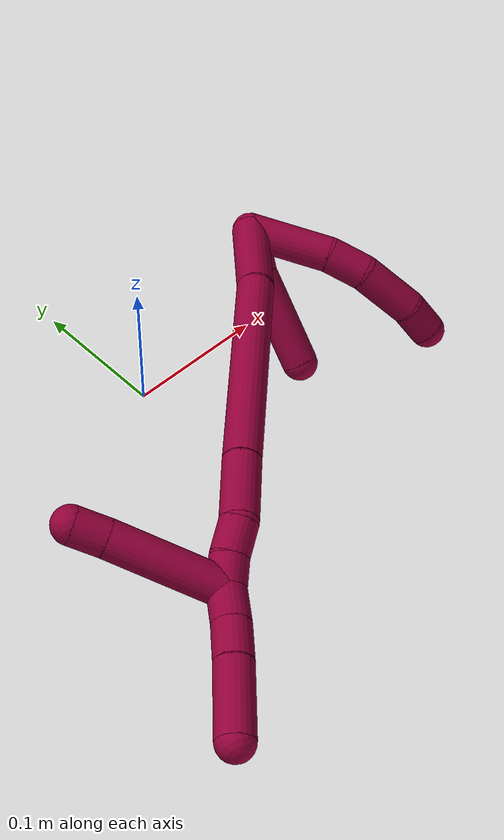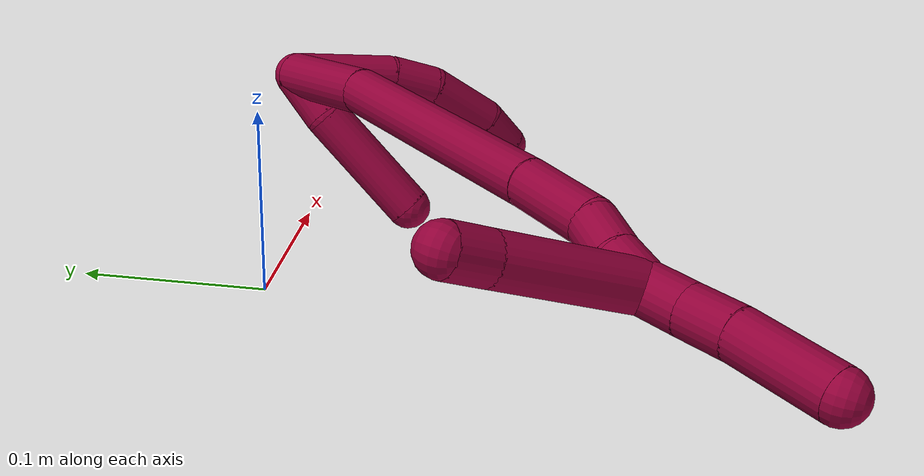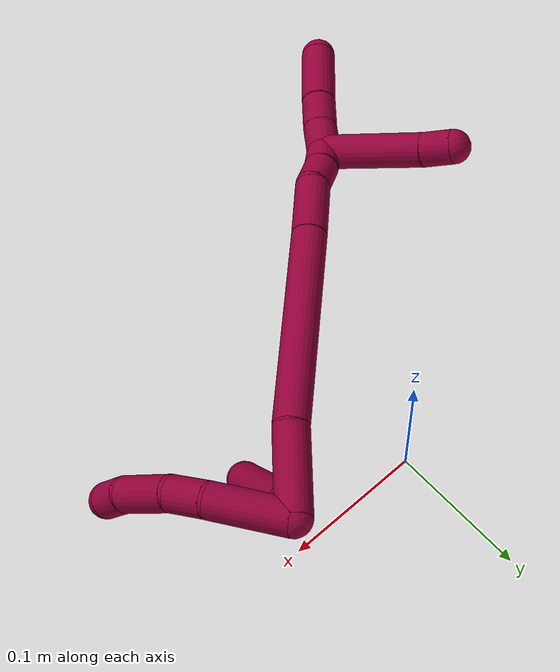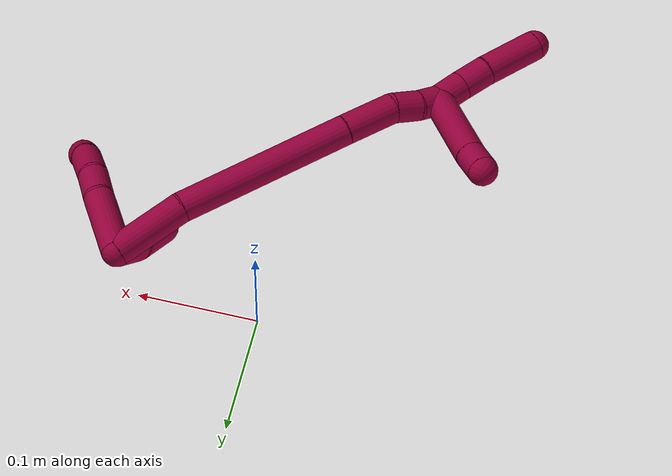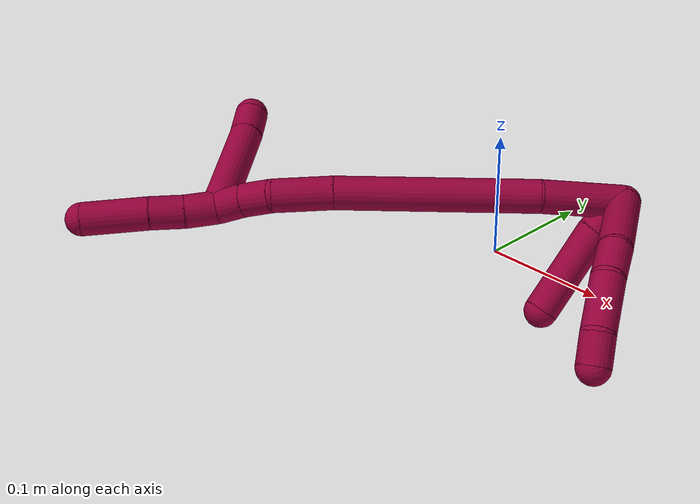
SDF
<sdf version="1.7">
 <world name="default">
  <model name="8">
   <static>0</static>
   <link name="8">
    <collision name="collision-cylinder-e_1_2_8">
     <pose>0.020152 0.00838 0.018831 -0.418704 0.774125 -0.172781</pose>
     <geometry><cylinder><radius>0.0125</radius><length>0.057651</length></cylinder></geometry>
     <surface>
      <friction><ode><mu>1.16</mu><mu2>1.16</mu2><slip1>0</slip1><slip2>0</slip2></ode></friction>
      <contact><ode><kp>1e+06</kp><kd>1</kd><max_vel>0</max_vel><min_depth>0.001</min_depth></ode></contact>
     </surface>
    </collision>
    <visual name="visual-cylinder-e_1_2_8">
     <pose>0.020152 0.00838 0.018831 -0.418704 0.774125 -0.172781</pose>
     <geometry><cylinder><radius>0.0125</radius><length>0.057651</length></cylinder></geometry>
     <material><ambient>0.584314 0 0.227451 1</ambient></material>
    </visual>
    <collision name="collision-cylinder-e_2_8_9">
     <pose>0.050165 0.017894 0.046996 -0.120894 0.80919 -0.051821</pose>
     <geometry><cylinder><radius>0.0125</radius><length>0.027254</length></cylinder></geometry>
     <surface>
      <friction><ode><mu>1.16</mu><mu2>1.16</mu2><slip1>0</slip1><slip2>0</slip2></ode></friction>
      <contact><ode><kp>1e+06</kp><kd>1</kd><max_vel>0</max_vel><min_depth>0.001</min_depth></ode></contact>
     </surface>
    </collision>
    <visual name="visual-cylinder-e_2_8_9">
     <pose>0.050165 0.017894 0.046996 -0.120894 0.80919 -0.051821</pose>
     <geometry><cylinder><radius>0.0125</radius><length>0.027254</length></cylinder></geometry>
     <material><ambient>0.584314 0 0.227451 1</ambient></material>
    </visual>
    <collision name="collision-cylinder-e_3_9_10">
     <pose>0.076098 0.015291 0.068929 0.288345 0.885368 0.137432</pose>
     <geometry><cylinder><radius>0.0125</radius><length>0.041518</length></cylinder></geometry>
     <surface>
      <friction><ode><mu>1.16</mu><mu2>1.16</mu2><slip1>0</slip1><slip2>0</slip2></ode></friction>
      <contact><ode><kp>1e+06</kp><kd>1</kd><max_vel>0</max_vel><min_depth>0.001</min_depth></ode></contact>
     </surface>
    </collision>
    <visual name="visual-cylinder-e_3_9_10">
     <pose>0.076098 0.015291 0.068929 0.288345 0.885368 0.137432</pose>
     <geometry><cylinder><radius>0.0125</radius><length>0.041518</length></cylinder></geometry>
     <material><ambient>0.584314 0 0.227451 1</ambient></material>
    </visual>
    <collision name="collision-cylinder-e_4_10_6">
     <pose>0.101197 0.006659 0.087315 0.702134 0.872413 0.338187</pose>
     <geometry><cylinder><radius>0.0125</radius><length>0.023578</length></cylinder></geometry>
     <surface>
      <friction><ode><mu>1.16</mu><mu2>1.16</mu2><slip1>0</slip1><slip2>0</slip2></ode></friction>
      <contact><ode><kp>1e+06</kp><kd>1</kd><max_vel>0</max_vel><min_depth>0.001</min_depth></ode></contact>
     </surface>
    </collision>
    <visual name="visual-cylinder-e_4_10_6">
     <pose>0.101197 0.006659 0.087315 0.702134 0.872413 0.338187</pose>
     <geometry><cylinder><radius>0.0125</radius><length>0.023578</length></cylinder></geometry>
     <material><ambient>0.584314 0 0.227451 1</ambient></material>
    </visual>
    <collision name="collision-cylinder-e_1_2_11">
     <pose>0.002903 -0.008784 0.011933 0.634533 0.193504 0.063716</pose>
     <geometry><cylinder><radius>0.0125</radius><length>0.030198</length></cylinder></geometry>
     <surface>
      <friction><ode><mu>1.16</mu><mu2>1.16</mu2><slip1>0</slip1><slip2>0</slip2></ode></friction>
      <contact><ode><kp>1e+06</kp><kd>1</kd><max_vel>0</max_vel><min_depth>0.001</min_depth></ode></contact>
     </surface>
    </collision>
    <visual name="visual-cylinder-e_1_2_11">
     <pose>0.002903 -0.008784 0.011933 0.634533 0.193504 0.063716</pose>
     <geometry><cylinder><radius>0.0125</radius><length>0.030198</length></cylinder></geometry>
     <material><ambient>0.584314 0 0.227451 1</ambient></material>
    </visual>
    <collision name="collision-cylinder-e_2_11_5">
     <pose>0.020697 -0.034939 0.050221 0.582792 0.440771 0.134183</pose>
     <geometry><cylinder><radius>0.0125</radius><length>0.069802</length></cylinder></geometry>
     <surface>
      <friction><ode><mu>1.16</mu><mu2>1.16</mu2><slip1>0</slip1><slip2>0</slip2></ode></friction>
      <contact><ode><kp>1e+06</kp><kd>1</kd><max_vel>0</max_vel><min_depth>0.001</min_depth></ode></contact>
     </surface>
    </collision>
    <visual name="visual-cylinder-e_2_11_5">
     <pose>0.020697 -0.034939 0.050221 0.582792 0.440771 0.134183</pose>
     <geometry><cylinder><radius>0.0125</radius><length>0.069802</length></cylinder></geometry>
     <material><ambient>0.584314 0 0.227451 1</ambient></material>
    </visual>
    <collision name="collision-cylinder-e_1_2_12">
     <pose>-0.012987 0.000116 0.02807 -0.004144 -0.433347 0.000912</pose>
     <geometry><cylinder><radius>0.0125</radius><length>0.061857</length></cylinder></geometry>
     <surface>
      <friction><ode><mu>1.16</mu><mu2>1.16</mu2><slip1>0</slip1><slip2>0</slip2></ode></friction>
      <contact><ode><kp>1e+06</kp><kd>1</kd><max_vel>0</max_vel><min_depth>0.001</min_depth></ode></contact>
     </surface>
    </collision>
    <visual name="visual-cylinder-e_1_2_12">
     <pose>-0.012987 0.000116 0.02807 -0.004144 -0.433347 0.000912</pose>
     <geometry><cylinder><radius>0.0125</radius><length>0.061857</length></cylinder></geometry>
     <material><ambient>0.584314 0 0.227451 1</ambient></material>
    </visual>
    <collision name="collision-cylinder-e_2_12_13">
     <pose>-0.060208 -0.010792 0.121629 0.16678 -0.475957 -0.040545</pose>
     <geometry><cylinder><radius>0.0125</radius><length>0.149431</length></cylinder></geometry>
     <surface>
      <friction><ode><mu>1.16</mu><mu2>1.16</mu2><slip1>0</slip1><slip2>0</slip2></ode></friction>
      <contact><ode><kp>1e+06</kp><kd>1</kd><max_vel>0</max_vel><min_depth>0.001</min_depth></ode></contact>
     </surface>
    </collision>
    <visual name="visual-cylinder-e_2_12_13">
     <pose>-0.060208 -0.010792 0.121629 0.16678 -0.475957 -0.040545</pose>
     <geometry><cylinder><radius>0.0125</radius><length>0.149431</length></cylinder></geometry>
     <material><ambient>0.584314 0 0.227451 1</ambient></material>
    </visual>
    <collision name="collision-cylinder-e_3_13_14">
     <pose>-0.103732 -0.026144 0.207269 0.211544 -0.423481 -0.045636</pose>
     <geometry><cylinder><radius>0.0125</radius><length>0.045214</length></cylinder></geometry>
     <surface>
      <friction><ode><mu>1.16</mu><mu2>1.16</mu2><slip1>0</slip1><slip2>0</slip2></ode></friction>
      <contact><ode><kp>1e+06</kp><kd>1</kd><max_vel>0</max_vel><min_depth>0.001</min_depth></ode></contact>
     </surface>
    </collision>
    <visual name="visual-cylinder-e_3_13_14">
     <pose>-0.103732 -0.026144 0.207269 0.211544 -0.423481 -0.045636</pose>
     <geometry><cylinder><radius>0.0125</radius><length>0.045214</length></cylinder></geometry>
     <material><ambient>0.584314 0 0.227451 1</ambient></material>
    </visual>
    <collision name="collision-cylinder-e_4_14_15">
     <pose>-0.118185 -0.035935 0.236204 0.556425 -0.462917 -0.134428</pose>
     <geometry><cylinder><radius>0.0125</radius><length>0.023123</length></cylinder></geometry>
     <surface>
      <friction><ode><mu>1.16</mu><mu2>1.16</mu2><slip1>0</slip1><slip2>0</slip2></ode></friction>
      <contact><ode><kp>1e+06</kp><kd>1</kd><max_vel>0</max_vel><min_depth>0.001</min_depth></ode></contact>
     </surface>
    </collision>
    <visual name="visual-cylinder-e_4_14_15">
     <pose>-0.118185 -0.035935 0.236204 0.556425 -0.462917 -0.134428</pose>
     <geometry><cylinder><radius>0.0125</radius><length>0.023123</length></cylinder></geometry>
     <material><ambient>0.584314 0 0.227451 1</ambient></material>
    </visual>
    <collision name="collision-cylinder-e_5_15_1">
     <pose>-0.126502 -0.045703 0.253666 0.460376 -0.314732 -0.074335</pose>
     <geometry><cylinder><radius>0.0125</radius><length>0.020375</length></cylinder></geometry>
     <surface>
      <friction><ode><mu>1.16</mu><mu2>1.16</mu2><slip1>0</slip1><slip2>0</slip2></ode></friction>
      <contact><ode><kp>1e+06</kp><kd>1</kd><max_vel>0</max_vel><min_depth>0.001</min_depth></ode></contact>
     </surface>
    </collision>
    <visual name="visual-cylinder-e_5_15_1">
     <pose>-0.126502 -0.045703 0.253666 0.460376 -0.314732 -0.074335</pose>
     <geometry><cylinder><radius>0.0125</radius><length>0.020375</length></cylinder></geometry>
     <material><ambient>0.584314 0 0.227451 1</ambient></material>
    </visual>
    <collision name="collision-cylinder-e_1_1_16">
     <pose>-0.132939 -0.051523 0.273852 0.131062 -0.275748 -0.018211</pose>
     <geometry><cylinder><radius>0.0125</radius><length>0.024124</length></cylinder></geometry>
     <surface>
      <friction><ode><mu>1.16</mu><mu2>1.16</mu2><slip1>0</slip1><slip2>0</slip2></ode></friction>
      <contact><ode><kp>1e+06</kp><kd>1</kd><max_vel>0</max_vel><min_depth>0.001</min_depth></ode></contact>
     </surface>
    </collision>
    <visual name="visual-cylinder-e_1_1_16">
     <pose>-0.132939 -0.051523 0.273852 0.131062 -0.275748 -0.018211</pose>
     <geometry><cylinder><radius>0.0125</radius><length>0.024124</length></cylinder></geometry>
     <material><ambient>0.584314 0 0.227451 1</ambient></material>
    </visual>
    <collision name="collision-cylinder-e_2_16_17">
     <pose>-0.140875 -0.054356 0.297256 0.110124 -0.370653 -0.020666</pose>
     <geometry><cylinder><radius>0.0125</radius><length>0.025686</length></cylinder></geometry>
     <surface>
      <friction><ode><mu>1.16</mu><mu2>1.16</mu2><slip1>0</slip1><slip2>0</slip2></ode></friction>
      <contact><ode><kp>1e+06</kp><kd>1</kd><max_vel>0</max_vel><min_depth>0.001</min_depth></ode></contact>
     </surface>
    </collision>
    <visual name="visual-cylinder-e_2_16_17">
     <pose>-0.140875 -0.054356 0.297256 0.110124 -0.370653 -0.020666</pose>
     <geometry><cylinder><radius>0.0125</radius><length>0.025686</length></cylinder></geometry>
     <material><ambient>0.584314 0 0.227451 1</ambient></material>
    </visual>
    <collision name="collision-cylinder-e_3_17_4">
     <pose>-0.154543 -0.060103 0.332151 0.190386 -0.367465 -0.035483</pose>
     <geometry><cylinder><radius>0.0125</radius><length>0.05019</length></cylinder></geometry>
     <surface>
      <friction><ode><mu>1.16</mu><mu2>1.16</mu2><slip1>0</slip1><slip2>0</slip2></ode></friction>
      <contact><ode><kp>1e+06</kp><kd>1</kd><max_vel>0</max_vel><min_depth>0.001</min_depth></ode></contact>
     </surface>
    </collision>
    <visual name="visual-cylinder-e_3_17_4">
     <pose>-0.154543 -0.060103 0.332151 0.190386 -0.367465 -0.035483</pose>
     <geometry><cylinder><radius>0.0125</radius><length>0.05019</length></cylinder></geometry>
     <material><ambient>0.584314 0 0.227451 1</ambient></material>
    </visual>
    <collision name="collision-cylinder-e_1_1_18">
     <pose>-0.159758 -0.053798 0.238194 2.98588 -0.88871 -2.81677</pose>
     <geometry><cylinder><radius>0.0125</radius><length>0.077558</length></cylinder></geometry>
     <surface>
      <friction><ode><mu>1.16</mu><mu2>1.16</mu2><slip1>0</slip1><slip2>0</slip2></ode></friction>
      <contact><ode><kp>1e+06</kp><kd>1</kd><max_vel>0</max_vel><min_depth>0.001</min_depth></ode></contact>
     </surface>
    </collision>
    <visual name="visual-cylinder-e_1_1_18">
     <pose>-0.159758 -0.053798 0.238194 2.98588 -0.88871 -2.81677</pose>
     <geometry><cylinder><radius>0.0125</radius><length>0.077558</length></cylinder></geometry>
     <material><ambient>0.584314 0 0.227451 1</ambient></material>
    </visual>
    <collision name="collision-cylinder-e_2_18_3">
     <pose>-0.199134 -0.058549 0.207799 2.989 -0.972822 -2.85446</pose>
     <geometry><cylinder><radius>0.0125</radius><length>0.022442</length></cylinder></geometry>
     <surface>
      <friction><ode><mu>1.16</mu><mu2>1.16</mu2><slip1>0</slip1><slip2>0</slip2></ode></friction>
      <contact><ode><kp>1e+06</kp><kd>1</kd><max_vel>0</max_vel><min_depth>0.001</min_depth></ode></contact>
     </surface>
    </collision>
    <visual name="visual-cylinder-e_2_18_3">
     <pose>-0.199134 -0.058549 0.207799 2.989 -0.972822 -2.85446</pose>
     <geometry><cylinder><radius>0.0125</radius><length>0.022442</length></cylinder></geometry>
     <material><ambient>0.584314 0 0.227451 1</ambient></material>
    </visual>
    <collision name="collision-sphere-3">
     <pose>-0.208408 -0.05951 0.201555 0 -0 0</pose>
     <geometry><sphere><radius>0.0125</radius></sphere></geometry>
     <surface>
      <friction><ode><mu>1.16</mu><mu2>1.16</mu2><slip1>0</slip1><slip2>0</slip2></ode></friction>
      <contact><ode><kp>1e+06</kp><kd>1</kd><max_vel>0</max_vel><min_depth>0.001</min_depth></ode></contact>
     </surface>
    </collision>
    <visual name="visual-sphere-3">
     <pose>-0.208408 -0.05951 0.201555 0 -0 0</pose>
     <geometry><sphere><radius>0.0125</radius></sphere></geometry>
     <material><ambient>0.584314 0 0.227451 1</ambient></material>
    </visual>
    <collision name="collision-sphere-11">
     <pose>0.005807 -0.017567 0.023866 0 -0 0</pose>
     <geometry><sphere><radius>0.0125</radius></sphere></geometry>
     <surface>
      <friction><ode><mu>1.16</mu><mu2>1.16</mu2><slip1>0</slip1><slip2>0</slip2></ode></friction>
      <contact><ode><kp>1e+06</kp><kd>1</kd><max_vel>0</max_vel><min_depth>0.001</min_depth></ode></contact>
     </surface>
    </collision>
    <visual name="visual-sphere-11">
     <pose>0.005807 -0.017567 0.023866 0 -0 0</pose>
     <geometry><sphere><radius>0.0125</radius></sphere></geometry>
     <material><ambient>0.584314 0 0.227451 1</ambient></material>
    </visual>
    <collision name="collision-sphere-6">
     <pose>0.110226 0.001764 0.093102 0 -0 0</pose>
     <geometry><sphere><radius>0.0125</radius></sphere></geometry>
     <surface>
      <friction><ode><mu>1.16</mu><mu2>1.16</mu2><slip1>0</slip1><slip2>0</slip2></ode></friction>
      <contact><ode><kp>1e+06</kp><kd>1</kd><max_vel>0</max_vel><min_depth>0.001</min_depth></ode></contact>
     </surface>
    </collision>
    <visual name="visual-sphere-6">
     <pose>0.110226 0.001764 0.093102 0 -0 0</pose>
     <geometry><sphere><radius>0.0125</radius></sphere></geometry>
     <material><ambient>0.584314 0 0.227451 1</ambient></material>
    </visual>
    <collision name="collision-sphere-10">
     <pose>0.092168 0.011555 0.081527 0 -0 0</pose>
     <geometry><sphere><radius>0.0125</radius></sphere></geometry>
     <surface>
      <friction><ode><mu>1.16</mu><mu2>1.16</mu2><slip1>0</slip1><slip2>0</slip2></ode></friction>
      <contact><ode><kp>1e+06</kp><kd>1</kd><max_vel>0</max_vel><min_depth>0.001</min_depth></ode></contact>
     </surface>
    </collision>
    <visual name="visual-sphere-10">
     <pose>0.092168 0.011555 0.081527 0 -0 0</pose>
     <geometry><sphere><radius>0.0125</radius></sphere></geometry>
     <material><ambient>0.584314 0 0.227451 1</ambient></material>
    </visual>
    <collision name="collision-sphere-9">
     <pose>0.060028 0.019028 0.056332 0 -0 0</pose>
     <geometry><sphere><radius>0.0125</radius></sphere></geometry>
     <surface>
      <friction><ode><mu>1.16</mu><mu2>1.16</mu2><slip1>0</slip1><slip2>0</slip2></ode></friction>
      <contact><ode><kp>1e+06</kp><kd>1</kd><max_vel>0</max_vel><min_depth>0.001</min_depth></ode></contact>
     </surface>
    </collision>
    <visual name="visual-sphere-9">
     <pose>0.060028 0.019028 0.056332 0 -0 0</pose>
     <geometry><sphere><radius>0.0125</radius></sphere></geometry>
     <material><ambient>0.584314 0 0.227451 1</ambient></material>
    </visual>
    <collision name="collision-sphere-2">
     <geometry><sphere><radius>0.0125</radius></sphere></geometry>
     <surface>
      <friction><ode><mu>1.16</mu><mu2>1.16</mu2><slip1>0</slip1><slip2>0</slip2></ode></friction>
      <contact><ode><kp>1e+06</kp><kd>1</kd><max_vel>0</max_vel><min_depth>0.001</min_depth></ode></contact>
     </surface>
    </collision>
    <visual name="visual-sphere-2">
     <geometry><sphere><radius>0.0125</radius></sphere></geometry>
     <material><ambient>0.584314 0 0.227451 1</ambient></material>
    </visual>
    <collision name="collision-sphere-8">
     <pose>0.040303 0.01676 0.037661 0 -0 0</pose>
     <geometry><sphere><radius>0.0125</radius></sphere></geometry>
     <surface>
      <friction><ode><mu>1.16</mu><mu2>1.16</mu2><slip1>0</slip1><slip2>0</slip2></ode></friction>
      <contact><ode><kp>1e+06</kp><kd>1</kd><max_vel>0</max_vel><min_depth>0.001</min_depth></ode></contact>
     </surface>
    </collision>
    <visual name="visual-sphere-8">
     <pose>0.040303 0.01676 0.037661 0 -0 0</pose>
     <geometry><sphere><radius>0.0125</radius></sphere></geometry>
     <material><ambient>0.584314 0 0.227451 1</ambient></material>
    </visual>
    <collision name="collision-sphere-5">
     <pose>0.035587 -0.052312 0.076576 0 -0 0</pose>
     <geometry><sphere><radius>0.0125</radius></sphere></geometry>
     <surface>
      <friction><ode><mu>1.16</mu><mu2>1.16</mu2><slip1>0</slip1><slip2>0</slip2></ode></friction>
      <contact><ode><kp>1e+06</kp><kd>1</kd><max_vel>0</max_vel><min_depth>0.001</min_depth></ode></contact>
     </surface>
    </collision>
    <visual name="visual-sphere-5">
     <pose>0.035587 -0.052312 0.076576 0 -0 0</pose>
     <geometry><sphere><radius>0.0125</radius></sphere></geometry>
     <material><ambient>0.584314 0 0.227451 1</ambient></material>
    </visual>
    <collision name="collision-sphere-12">
     <pose>-0.025975 0.000233 0.056139 0 -0 0</pose>
     <geometry><sphere><radius>0.0125</radius></sphere></geometry>
     <surface>
      <friction><ode><mu>1.16</mu><mu2>1.16</mu2><slip1>0</slip1><slip2>0</slip2></ode></friction>
      <contact><ode><kp>1e+06</kp><kd>1</kd><max_vel>0</max_vel><min_depth>0.001</min_depth></ode></contact>
     </surface>
    </collision>
    <visual name="visual-sphere-12">
     <pose>-0.025975 0.000233 0.056139 0 -0 0</pose>
     <geometry><sphere><radius>0.0125</radius></sphere></geometry>
     <material><ambient>0.584314 0 0.227451 1</ambient></material>
    </visual>
    <collision name="collision-sphere-13">
     <pose>-0.094442 -0.021817 0.187118 0 -0 0</pose>
     <geometry><sphere><radius>0.0125</radius></sphere></geometry>
     <surface>
      <friction><ode><mu>1.16</mu><mu2>1.16</mu2><slip1>0</slip1><slip2>0</slip2></ode></friction>
      <contact><ode><kp>1e+06</kp><kd>1</kd><max_vel>0</max_vel><min_depth>0.001</min_depth></ode></contact>
     </surface>
    </collision>
    <visual name="visual-sphere-13">
     <pose>-0.094442 -0.021817 0.187118 0 -0 0</pose>
     <geometry><sphere><radius>0.0125</radius></sphere></geometry>
     <material><ambient>0.584314 0 0.227451 1</ambient></material>
    </visual>
    <collision name="collision-sphere-14">
     <pose>-0.113022 -0.030472 0.22742 0 -0 0</pose>
     <geometry><sphere><radius>0.0125</radius></sphere></geometry>
     <surface>
      <friction><ode><mu>1.16</mu><mu2>1.16</mu2><slip1>0</slip1><slip2>0</slip2></ode></friction>
      <contact><ode><kp>1e+06</kp><kd>1</kd><max_vel>0</max_vel><min_depth>0.001</min_depth></ode></contact>
     </surface>
    </collision>
    <visual name="visual-sphere-14">
     <pose>-0.113022 -0.030472 0.22742 0 -0 0</pose>
     <geometry><sphere><radius>0.0125</radius></sphere></geometry>
     <material><ambient>0.584314 0 0.227451 1</ambient></material>
    </visual>
    <collision name="collision-sphere-15">
     <pose>-0.123348 -0.041399 0.244988 0 -0 0</pose>
     <geometry><sphere><radius>0.0125</radius></sphere></geometry>
     <surface>
      <friction><ode><mu>1.16</mu><mu2>1.16</mu2><slip1>0</slip1><slip2>0</slip2></ode></friction>
      <contact><ode><kp>1e+06</kp><kd>1</kd><max_vel>0</max_vel><min_depth>0.001</min_depth></ode></contact>
     </surface>
    </collision>
    <visual name="visual-sphere-15">
     <pose>-0.123348 -0.041399 0.244988 0 -0 0</pose>
     <geometry><sphere><radius>0.0125</radius></sphere></geometry>
     <material><ambient>0.584314 0 0.227451 1</ambient></material>
    </visual>
    <collision name="collision-sphere-1">
     <pose>-0.129655 -0.050007 0.262345 0 -0 0</pose>
     <geometry><sphere><radius>0.0125</radius></sphere></geometry>
     <surface>
      <friction><ode><mu>1.16</mu><mu2>1.16</mu2><slip1>0</slip1><slip2>0</slip2></ode></friction>
      <contact><ode><kp>1e+06</kp><kd>1</kd><max_vel>0</max_vel><min_depth>0.001</min_depth></ode></contact>
     </surface>
    </collision>
    <visual name="visual-sphere-1">
     <pose>-0.129655 -0.050007 0.262345 0 -0 0</pose>
     <geometry><sphere><radius>0.0125</radius></sphere></geometry>
     <material><ambient>0.584314 0 0.227451 1</ambient></material>
    </visual>
    <collision name="collision-sphere-18">
     <pose>-0.189861 -0.057589 0.214043 0 -0 0</pose>
     <geometry><sphere><radius>0.0125</radius></sphere></geometry>
     <surface>
      <friction><ode><mu>1.16</mu><mu2>1.16</mu2><slip1>0</slip1><slip2>0</slip2></ode></friction>
      <contact><ode><kp>1e+06</kp><kd>1</kd><max_vel>0</max_vel><min_depth>0.001</min_depth></ode></contact>
     </surface>
    </collision>
    <visual name="visual-sphere-18">
     <pose>-0.189861 -0.057589 0.214043 0 -0 0</pose>
     <geometry><sphere><radius>0.0125</radius></sphere></geometry>
     <material><ambient>0.584314 0 0.227451 1</ambient></material>
    </visual>
    <collision name="collision-sphere-16">
     <pose>-0.136223 -0.05304 0.285358 0 -0 0</pose>
     <geometry><sphere><radius>0.0125</radius></sphere></geometry>
     <surface>
      <friction><ode><mu>1.16</mu><mu2>1.16</mu2><slip1>0</slip1><slip2>0</slip2></ode></friction>
      <contact><ode><kp>1e+06</kp><kd>1</kd><max_vel>0</max_vel><min_depth>0.001</min_depth></ode></contact>
     </surface>
    </collision>
    <visual name="visual-sphere-16">
     <pose>-0.136223 -0.05304 0.285358 0 -0 0</pose>
     <geometry><sphere><radius>0.0125</radius></sphere></geometry>
     <material><ambient>0.584314 0 0.227451 1</ambient></material>
    </visual>
    <collision name="collision-sphere-17">
     <pose>-0.145527 -0.055671 0.309155 0 -0 0</pose>
     <geometry><sphere><radius>0.0125</radius></sphere></geometry>
     <surface>
      <friction><ode><mu>1.16</mu><mu2>1.16</mu2><slip1>0</slip1><slip2>0</slip2></ode></friction>
      <contact><ode><kp>1e+06</kp><kd>1</kd><max_vel>0</max_vel><min_depth>0.001</min_depth></ode></contact>
     </surface>
    </collision>
    <visual name="visual-sphere-17">
     <pose>-0.145527 -0.055671 0.309155 0 -0 0</pose>
     <geometry><sphere><radius>0.0125</radius></sphere></geometry>
     <material><ambient>0.584314 0 0.227451 1</ambient></material>
    </visual>
    <collision name="collision-sphere-4">
     <pose>-0.163558 -0.064535 0.355148 0 -0 0</pose>
     <geometry><sphere><radius>0.0125</radius></sphere></geometry>
     <surface>
      <friction><ode><mu>1.16</mu><mu2>1.16</mu2><slip1>0</slip1><slip2>0</slip2></ode></friction>
      <contact><ode><kp>1e+06</kp><kd>1</kd><max_vel>0</max_vel><min_depth>0.001</min_depth></ode></contact>
     </surface>
    </collision>
    <visual name="visual-sphere-4">
     <pose>-0.163558 -0.064535 0.355148 0 -0 0</pose>
     <geometry><sphere><radius>0.0125</radius></sphere></geometry>
     <material><ambient>0.584314 0 0.227451 1</ambient></material>
    </visual>
    <inertial>
     <pose>-0.055514 -0.022178 0.140154 0 -0 0</pose>
     <mass>0.75</mass>
     <inertia>
      <ixx>0.000301</ixx>
      <ixy>0</ixy>
      <ixz>0</ixz>
      <iyy>0.000406</iyy>
      <iyz>0</iyz>
      <izz>0.000251</izz>
     </inertia>
    </inertial>
   </link>
   <pose>0.110963 0.008358 0.081765 1.68483 0.490091 -0.270848</pose>
  </model>
 </world>
</sdf>
